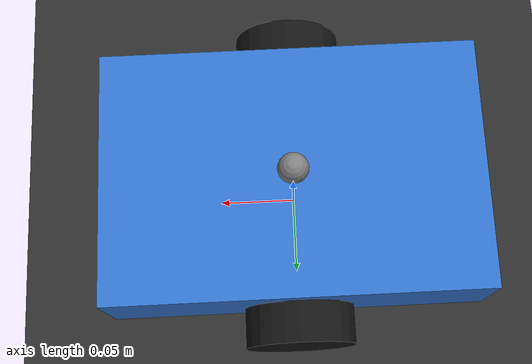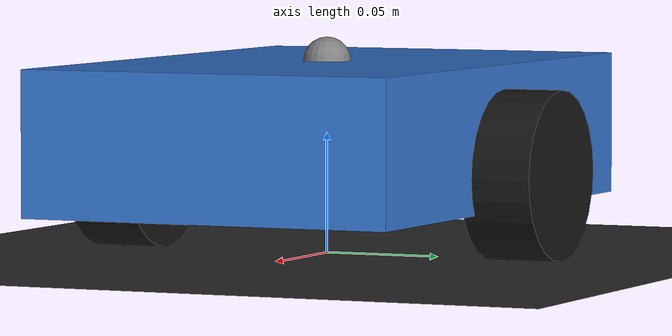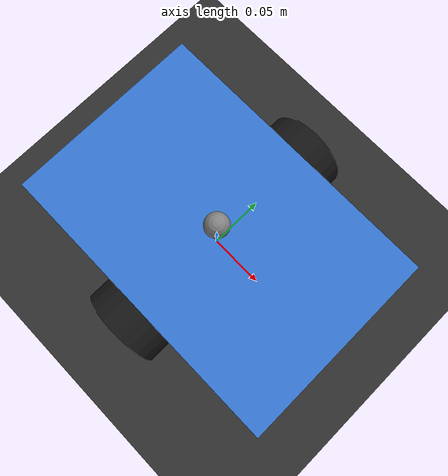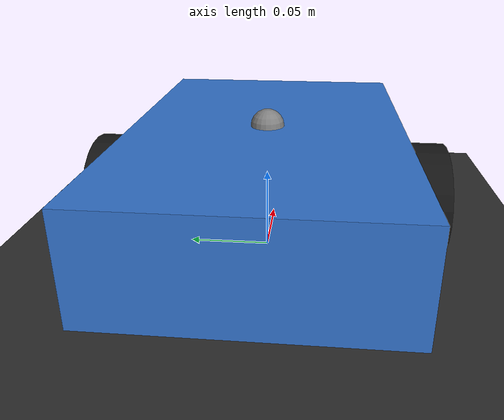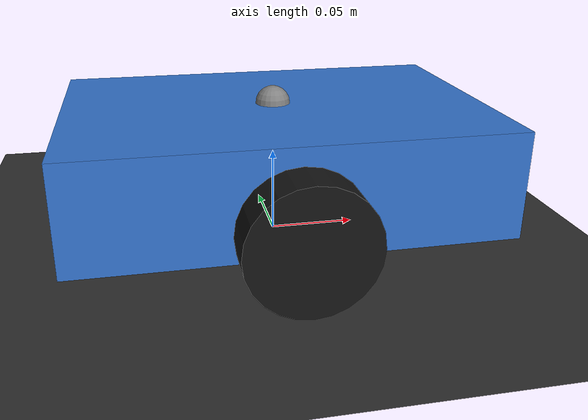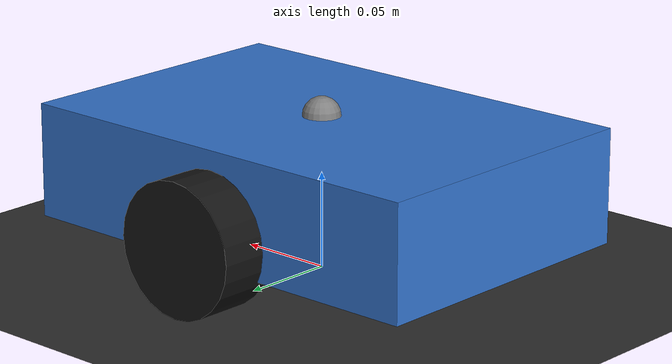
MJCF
<mujoco model="path_tracking_robot">
  <compiler angle="radian" coordinate="local"/>
  <option timestep="0.01" gravity="0 0 -9.81" integrator="RK4"/>

  <default>
    <joint damping="0.5" armature="0.01"/>
    <geom friction="1.2 0.005 0.0001" condim="3"/>
  </default>

  <asset>
    <texture
      name="floor_tex"
      type="2d"
      builtin="checker"
      width="512"
      height="512"
      rgb1="0.14 0.14 0.14"
      rgb2="0.22 0.22 0.22"
      mark="none"
    />
    <material
      name="floor_mat"
      texture="floor_tex"
      texrepeat="12 12"
      reflectance="0.1"
    />
    <material name="body_mat" rgba="0.20 0.45 0.80 1"/>
    <material name="wheel_mat" rgba="0.08 0.08 0.08 1"/>
  </asset>

  <worldbody>
    <light name="sun" pos="0 0 4" diffuse="0.9 0.9 0.9"/>
    <geom name="floor" type="plane" size="0 0 0.05" material="floor_mat"/>

    <camera
      name="free_cam"
      pos="0 -4.0 2.6"
      xyaxes="1 0 0 0 0.6 0.8"
    />

    <body name="robot" pos="0 0 0.05">
      <joint name="base_x" type="slide" axis="1 0 0" limited="false"/>
      <joint name="base_y" type="slide" axis="0 1 0" limited="false"/>
      <joint name="base_yaw" type="hinge" axis="0 0 1" limited="false"/>

      <inertial pos="0 0 0" mass="1.0" diaginertia="0.02 0.02 0.03"/>

      <geom
        name="chassis"
        type="box"
        size="0.12 0.08 0.03"
        material="body_mat"
      />

      <body name="left_wheel" pos="0 0.09 -0.015">
        <joint
          name="left_wheel_joint"
          type="hinge"
          axis="0 1 0"
          limited="false"
        />
        <geom
          name="left_wheel_geom"
          type="cylinder"
          size="0.035 0.015"
          euler="1.57079632679 0 0"
          material="wheel_mat"
        />
      </body>

      <body name="right_wheel" pos="0 -0.09 -0.015">
        <joint
          name="right_wheel_joint"
          type="hinge"
          axis="0 1 0"
          limited="false"
        />
        <geom
          name="right_wheel_geom"
          type="cylinder"
          size="0.035 0.015"
          euler="1.57079632679 0 0"
          material="wheel_mat"
        />
      </body>

      <site name="robot_ref" pos="0 0 0.03" size="0.01"/>
      <site name="vel_ref" pos="0 0 0.03" size="0.01"/>

      <camera
        name="track_cam"
        mode="trackcom"
        pos="-1.4 0 0.8"
        xyaxes="0 -1 0 0 0.45 1"
      />
    </body>
  </worldbody>

  <actuator>
    <!-- Increased actuator gain and force limits to allow higher top speed -->
    <velocity
      joint="left_wheel_joint"
      kv="10.0"
      ctrlrange="-1 1"
      forcelimited="true"
      forcerange="-30 30"
    />
    <velocity
      joint="right_wheel_joint"
      kv="10.0"
      ctrlrange="-1 1"
      forcelimited="true"
      forcerange="-30 30"
    />
  </actuator>

  <sensor>
    <framepos name="robot_pos" objtype="body" objname="robot"/>
    <framequat name="robot_quat" objtype="body" objname="robot"/>
    <velocimeter name="robot_vel" site="vel_ref"/>
  </sensor>
</mujoco>
